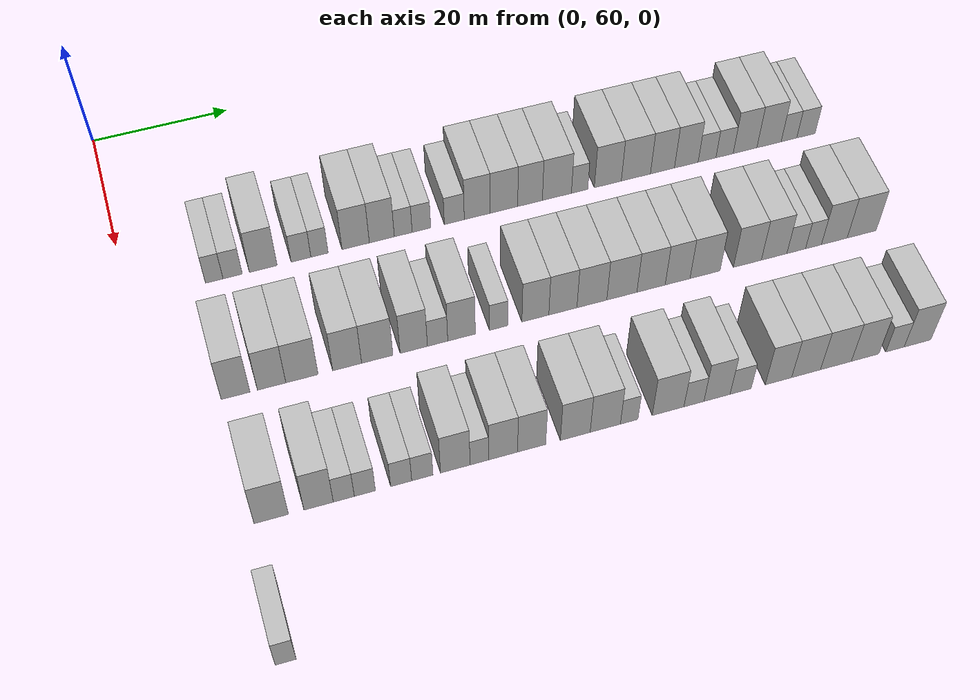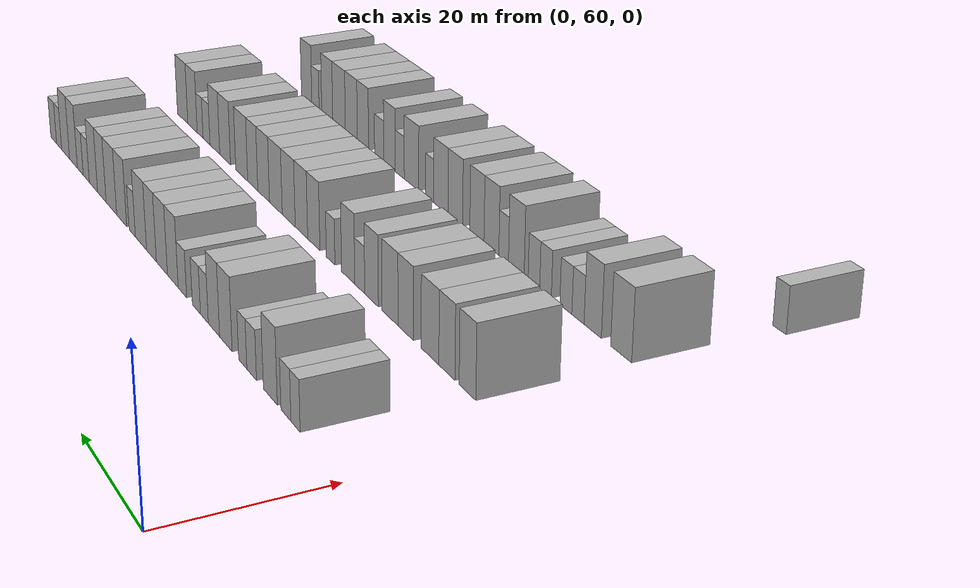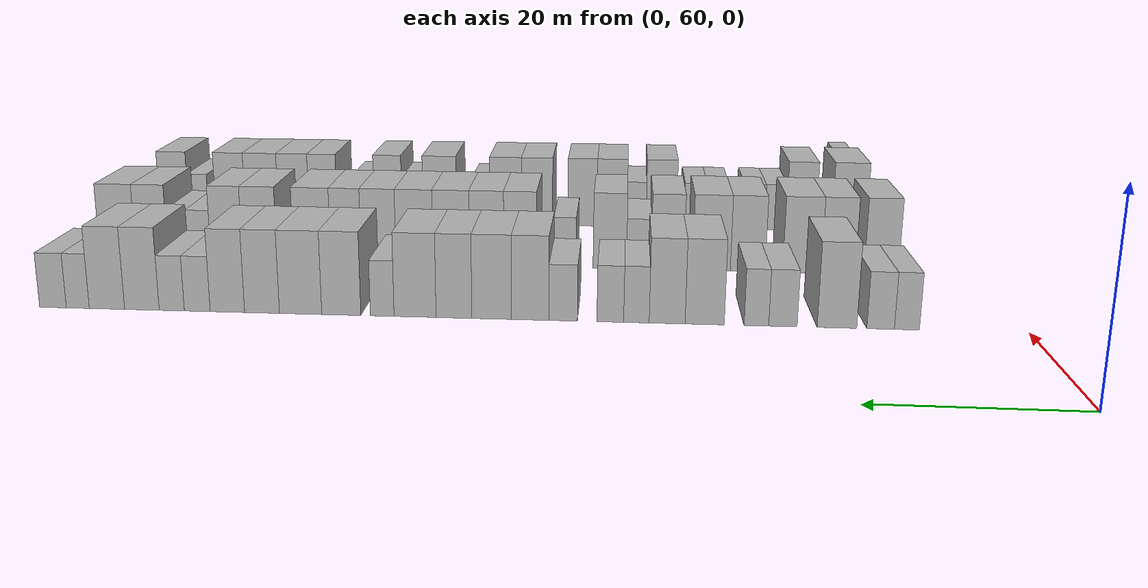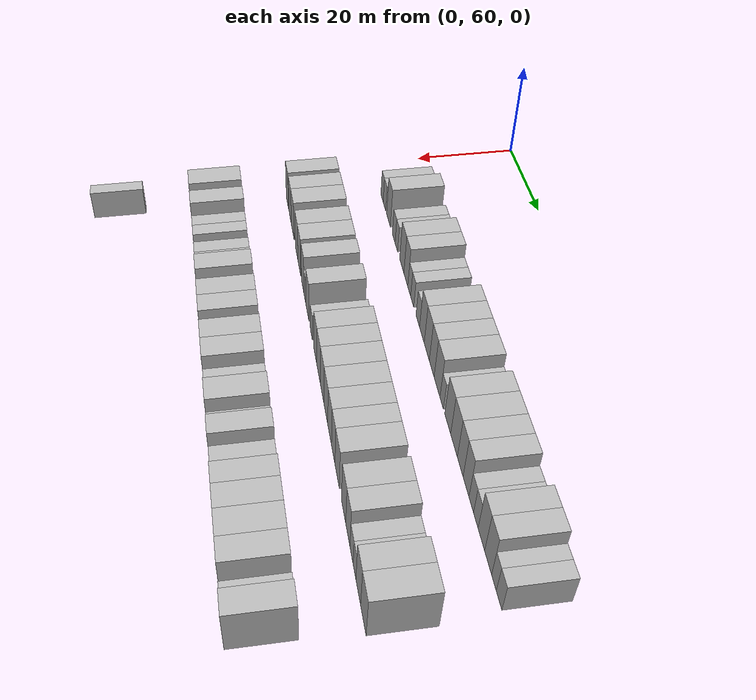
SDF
<sdf version="1.6">
 <world name="default">
  <model name="building_103">
   <static>1</static>
   <pose>25.0000 71.9956 0 0.000000 0.000000 0.000000</pose>
   <link name="link">
    <pose>0 0 3.00 0 0 0</pose>
    <collision name="collision"><geometry><box><size>10.0000 2.4701 6.0000</size></box></geometry></collision>
    <visual name="visual">
     <cast_shadows>0</cast_shadows>
     <geometry><box><size>10.0000 2.4701 6.0000</size></box></geometry>
     <material>
      <script>
       <uri>model://HANNAS_wall/materials/scripts</uri>
       <uri>model://HANNAS_wall/materials/textures</uri>
       <name>vrc/HANNAS_wall</name>
      </script>
     </material>
    </visual>
   </link>
  </model>
  <model name="building_104">
   <static>1</static>
   <pose>25.0000 74.5949 0 0.000000 0.000000 0.000000</pose>
   <link name="link">
    <pose>0 0 3.00 0 0 0</pose>
    <collision name="collision"><geometry><box><size>10.0000 2.7285 6.0000</size></box></geometry></collision>
    <visual name="visual">
     <cast_shadows>0</cast_shadows>
     <geometry><box><size>10.0000 2.7285 6.0000</size></box></geometry>
     <material>
      <script>
       <uri>model://HANNAS_wall/materials/scripts</uri>
       <uri>model://HANNAS_wall/materials/textures</uri>
       <name>vrc/HANNAS_wall</name>
      </script>
     </material>
    </visual>
   </link>
  </model>
  <model name="building_105">
   <static>1</static>
   <pose>25.0000 78.9301 0 0.000000 0.000000 0.000000</pose>
   <link name="link">
    <pose>0 0 4.50 0 0 0</pose>
    <collision name="collision"><geometry><box><size>10.0000 3.9420 9.0000</size></box></geometry></collision>
    <visual name="visual">
     <cast_shadows>0</cast_shadows>
     <geometry><box><size>10.0000 3.9420 9.0000</size></box></geometry>
     <material>
      <script>
       <uri>model://HANNAS_wall/materials/scripts</uri>
       <uri>model://HANNAS_wall/materials/textures</uri>
       <name>vrc/HANNAS_wall</name>
      </script>
     </material>
    </visual>
   </link>
  </model>
  <model name="building_106">
   <static>1</static>
   <pose>25.0000 84.3247 0 0.000000 0.000000 0.000000</pose>
   <link name="link">
    <pose>0 0 3.00 0 0 0</pose>
    <collision name="collision"><geometry><box><size>10.0000 2.8471 6.0000</size></box></geometry></collision>
    <visual name="visual">
     <cast_shadows>0</cast_shadows>
     <geometry><box><size>10.0000 2.8471 6.0000</size></box></geometry>
     <material>
      <script>
       <uri>model://HANNAS_wall/materials/scripts</uri>
       <uri>model://HANNAS_wall/materials/textures</uri>
       <name>vrc/HANNAS_wall</name>
      </script>
     </material>
    </visual>
   </link>
  </model>
  <model name="building_107">
   <static>1</static>
   <pose>25.0000 86.9825 0 0.000000 0.000000 0.000000</pose>
   <link name="link">
    <pose>0 0 3.00 0 0 0</pose>
    <collision name="collision"><geometry><box><size>10.0000 2.4686 6.0000</size></box></geometry></collision>
    <visual name="visual">
     <cast_shadows>0</cast_shadows>
     <geometry><box><size>10.0000 2.4686 6.0000</size></box></geometry>
     <material>
      <script>
       <uri>model://HANNAS_wall/materials/scripts</uri>
       <uri>model://HANNAS_wall/materials/textures</uri>
       <name>vrc/HANNAS_wall</name>
      </script>
     </material>
    </visual>
   </link>
  </model>
  <model name="building_108">
   <static>1</static>
   <pose>25.0000 92.1960 0 0.000000 0.000000 0.000000</pose>
   <link name="link">
    <pose>0 0 4.50 0 0 0</pose>
    <collision name="collision"><geometry><box><size>10.0000 3.9583 9.0000</size></box></geometry></collision>
    <visual name="visual">
     <cast_shadows>0</cast_shadows>
     <geometry><box><size>10.0000 3.9583 9.0000</size></box></geometry>
     <material>
      <script>
       <uri>model://HANNAS_wall/materials/scripts</uri>
       <uri>model://HANNAS_wall/materials/textures</uri>
       <name>vrc/HANNAS_wall</name>
      </script>
     </material>
    </visual>
   </link>
  </model>
  <model name="building_109">
   <static>1</static>
   <pose>25.0000 95.9973 0 0.000000 0.000000 0.000000</pose>
   <link name="link">
    <pose>0 0 4.50 0 0 0</pose>
    <collision name="collision"><geometry><box><size>10.0000 3.6442 9.0000</size></box></geometry></collision>
    <visual name="visual">
     <cast_shadows>0</cast_shadows>
     <geometry><box><size>10.0000 3.6442 9.0000</size></box></geometry>
     <material>
      <script>
       <uri>model://HANNAS_wall/materials/scripts</uri>
       <uri>model://HANNAS_wall/materials/textures</uri>
       <name>vrc/HANNAS_wall</name>
      </script>
     </material>
    </visual>
   </link>
  </model>
  <model name="building_110">
   <static>1</static>
   <pose>25.0000 99.1210 0 0.000000 0.000000 0.000000</pose>
   <link name="link">
    <pose>0 0 3.00 0 0 0</pose>
    <collision name="collision"><geometry><box><size>10.0000 2.6032 6.0000</size></box></geometry></collision>
    <visual name="visual">
     <cast_shadows>0</cast_shadows>
     <geometry><box><size>10.0000 2.6032 6.0000</size></box></geometry>
     <material>
      <script>
       <uri>model://HANNAS_wall/materials/scripts</uri>
       <uri>model://HANNAS_wall/materials/textures</uri>
       <name>vrc/HANNAS_wall</name>
      </script>
     </material>
    </visual>
   </link>
  </model>
  <model name="building_111">
   <static>1</static>
   <pose>25.0000 101.7868 0 0.000000 0.000000 0.000000</pose>
   <link name="link">
    <pose>0 0 3.00 0 0 0</pose>
    <collision name="collision"><geometry><box><size>10.0000 2.7285 6.0000</size></box></geometry></collision>
    <visual name="visual">
     <cast_shadows>0</cast_shadows>
     <geometry><box><size>10.0000 2.7285 6.0000</size></box></geometry>
     <material>
      <script>
       <uri>model://HANNAS_wall/materials/scripts</uri>
       <uri>model://HANNAS_wall/materials/textures</uri>
       <name>vrc/HANNAS_wall</name>
      </script>
     </material>
    </visual>
   </link>
  </model>
  <model name="building_112">
   <static>1</static>
   <pose>25.0000 106.6266 0 0.000000 0.000000 0.000000</pose>
   <link name="link">
    <pose>0 0 3.00 0 0 0</pose>
    <collision name="collision"><geometry><box><size>10.0000 2.9510 6.0000</size></box></geometry></collision>
    <visual name="visual">
     <cast_shadows>0</cast_shadows>
     <geometry><box><size>10.0000 2.9510 6.0000</size></box></geometry>
     <material>
      <script>
       <uri>model://HANNAS_wall/materials/scripts</uri>
       <uri>model://HANNAS_wall/materials/textures</uri>
       <name>vrc/HANNAS_wall</name>
      </script>
     </material>
    </visual>
   </link>
  </model>
  <model name="building_113">
   <static>1</static>
   <pose>25.0000 110.0286 0 0.000000 0.000000 0.000000</pose>
   <link name="link">
    <pose>0 0 4.50 0 0 0</pose>
    <collision name="collision"><geometry><box><size>10.0000 3.8529 9.0000</size></box></geometry></collision>
    <visual name="visual">
     <cast_shadows>0</cast_shadows>
     <geometry><box><size>10.0000 3.8529 9.0000</size></box></geometry>
     <material>
      <script>
       <uri>model://HANNAS_wall/materials/scripts</uri>
       <uri>model://HANNAS_wall/materials/textures</uri>
       <name>vrc/HANNAS_wall</name>
      </script>
     </material>
    </visual>
   </link>
  </model>
  <model name="building_114">
   <static>1</static>
   <pose>25.0000 114.0044 0 0.000000 0.000000 0.000000</pose>
   <link name="link">
    <pose>0 0 4.50 0 0 0</pose>
    <collision name="collision"><geometry><box><size>10.0000 4.0986 9.0000</size></box></geometry></collision>
    <visual name="visual">
     <cast_shadows>0</cast_shadows>
     <geometry><box><size>10.0000 4.0986 9.0000</size></box></geometry>
     <material>
      <script>
       <uri>model://HANNAS_wall/materials/scripts</uri>
       <uri>model://HANNAS_wall/materials/textures</uri>
       <name>vrc/HANNAS_wall</name>
      </script>
     </material>
    </visual>
   </link>
  </model>
  <model name="building_115">
   <static>1</static>
   <pose>25.0000 117.9129 0 0.000000 0.000000 0.000000</pose>
   <link name="link">
    <pose>0 0 4.50 0 0 0</pose>
    <collision name="collision"><geometry><box><size>10.0000 3.7184 9.0000</size></box></geometry></collision>
    <visual name="visual">
     <cast_shadows>0</cast_shadows>
     <geometry><box><size>10.0000 3.7184 9.0000</size></box></geometry>
     <material>
      <script>
       <uri>model://HANNAS_wall/materials/scripts</uri>
       <uri>model://HANNAS_wall/materials/textures</uri>
       <name>vrc/HANNAS_wall</name>
      </script>
     </material>
    </visual>
   </link>
  </model>
  <model name="building_116">
   <static>1</static>
   <pose>25.0000 121.9671 0 0.000000 0.000000 0.000000</pose>
   <link name="link">
    <pose>0 0 4.50 0 0 0</pose>
    <collision name="collision"><geometry><box><size>10.0000 4.3900 9.0000</size></box></geometry></collision>
    <visual name="visual">
     <cast_shadows>0</cast_shadows>
     <geometry><box><size>10.0000 4.3900 9.0000</size></box></geometry>
     <material>
      <script>
       <uri>model://HANNAS_wall/materials/scripts</uri>
       <uri>model://HANNAS_wall/materials/textures</uri>
       <name>vrc/HANNAS_wall</name>
      </script>
     </material>
    </visual>
   </link>
  </model>
  <model name="building_117">
   <static>1</static>
   <pose>25.0000 125.4050 0 0.000000 0.000000 0.000000</pose>
   <link name="link">
    <pose>0 0 3.00 0 0 0</pose>
    <collision name="collision"><geometry><box><size>10.0000 2.4857 6.0000</size></box></geometry></collision>
    <visual name="visual">
     <cast_shadows>0</cast_shadows>
     <geometry><box><size>10.0000 2.4857 6.0000</size></box></geometry>
     <material>
      <script>
       <uri>model://HANNAS_wall/materials/scripts</uri>
       <uri>model://HANNAS_wall/materials/textures</uri>
       <name>vrc/HANNAS_wall</name>
      </script>
     </material>
    </visual>
   </link>
  </model>
  <model name="building_118">
   <static>1</static>
   <pose>25.0000 129.7108 0 0.000000 0.000000 0.000000</pose>
   <link name="link">
    <pose>0 0 4.50 0 0 0</pose>
    <collision name="collision"><geometry><box><size>10.0000 4.1260 9.0000</size></box></geometry></collision>
    <visual name="visual">
     <cast_shadows>0</cast_shadows>
     <geometry><box><size>10.0000 4.1260 9.0000</size></box></geometry>
     <material>
      <script>
       <uri>model://HANNAS_wall/materials/scripts</uri>
       <uri>model://HANNAS_wall/materials/textures</uri>
       <name>vrc/HANNAS_wall</name>
      </script>
     </material>
    </visual>
   </link>
  </model>
  <model name="building_119">
   <static>1</static>
   <pose>25.0000 134.0146 0 0.000000 0.000000 0.000000</pose>
   <link name="link">
    <pose>0 0 4.50 0 0 0</pose>
    <collision name="collision"><geometry><box><size>10.0000 4.4817 9.0000</size></box></geometry></collision>
    <visual name="visual">
     <cast_shadows>0</cast_shadows>
     <geometry><box><size>10.0000 4.4817 9.0000</size></box></geometry>
     <material>
      <script>
       <uri>model://HANNAS_wall/materials/scripts</uri>
       <uri>model://HANNAS_wall/materials/textures</uri>
       <name>vrc/HANNAS_wall</name>
      </script>
     </material>
    </visual>
   </link>
  </model>
  <model name="building_120">
   <static>1</static>
   <pose>25.0000 138.1126 0 0.000000 0.000000 0.000000</pose>
   <link name="link">
    <pose>0 0 4.50 0 0 0</pose>
    <collision name="collision"><geometry><box><size>10.0000 3.7144 9.0000</size></box></geometry></collision>
    <visual name="visual">
     <cast_shadows>0</cast_shadows>
     <geometry><box><size>10.0000 3.7144 9.0000</size></box></geometry>
     <material>
      <script>
       <uri>model://HANNAS_wall/materials/scripts</uri>
       <uri>model://HANNAS_wall/materials/textures</uri>
       <name>vrc/HANNAS_wall</name>
      </script>
     </material>
    </visual>
   </link>
  </model>
  <model name="building_121">
   <static>1</static>
   <pose>25.0000 141.8092 0 0.000000 0.000000 0.000000</pose>
   <link name="link">
    <pose>0 0 4.50 0 0 0</pose>
    <collision name="collision"><geometry><box><size>10.0000 3.6787 9.0000</size></box></geometry></collision>
    <visual name="visual">
     <cast_shadows>0</cast_shadows>
     <geometry><box><size>10.0000 3.6787 9.0000</size></box></geometry>
     <material>
      <script>
       <uri>model://HANNAS_wall/materials/scripts</uri>
       <uri>model://HANNAS_wall/materials/textures</uri>
       <name>vrc/HANNAS_wall</name>
      </script>
     </material>
    </visual>
   </link>
  </model>
  <model name="building_122">
   <static>1</static>
   <pose>25.0000 145.0385 0 0.000000 0.000000 0.000000</pose>
   <link name="link">
    <pose>0 0 3.00 0 0 0</pose>
    <collision name="collision"><geometry><box><size>10.0000 2.7798 6.0000</size></box></geometry></collision>
    <visual name="visual">
     <cast_shadows>0</cast_shadows>
     <geometry><box><size>10.0000 2.7798 6.0000</size></box></geometry>
     <material>
      <script>
       <uri>model://HANNAS_wall/materials/scripts</uri>
       <uri>model://HANNAS_wall/materials/textures</uri>
       <name>vrc/HANNAS_wall</name>
      </script>
     </material>
    </visual>
   </link>
  </model>
  <model name="building_123">
   <static>1</static>
   <pose>25.0000 147.7805 0 0.000000 0.000000 0.000000</pose>
   <link name="link">
    <pose>0 0 3.00 0 0 0</pose>
    <collision name="collision"><geometry><box><size>10.0000 2.7042 6.0000</size></box></geometry></collision>
    <visual name="visual">
     <cast_shadows>0</cast_shadows>
     <geometry><box><size>10.0000 2.7042 6.0000</size></box></geometry>
     <material>
      <script>
       <uri>model://HANNAS_wall/materials/scripts</uri>
       <uri>model://HANNAS_wall/materials/textures</uri>
       <name>vrc/HANNAS_wall</name>
      </script>
     </material>
    </visual>
   </link>
  </model>
  <model name="building_124">
   <static>1</static>
   <pose>25.0000 151.0014 0 0.000000 0.000000 0.000000</pose>
   <link name="link">
    <pose>0 0 4.50 0 0 0</pose>
    <collision name="collision"><geometry><box><size>10.0000 3.7376 9.0000</size></box></geometry></collision>
    <visual name="visual">
     <cast_shadows>0</cast_shadows>
     <geometry><box><size>10.0000 3.7376 9.0000</size></box></geometry>
     <material>
      <script>
       <uri>model://HANNAS_wall/materials/scripts</uri>
       <uri>model://HANNAS_wall/materials/textures</uri>
       <name>vrc/HANNAS_wall</name>
      </script>
     </material>
    </visual>
   </link>
  </model>
  <model name="building_125">
   <static>1</static>
   <pose>25.0000 154.7892 0 0.000000 0.000000 0.000000</pose>
   <link name="link">
    <pose>0 0 4.50 0 0 0</pose>
    <collision name="collision"><geometry><box><size>10.0000 3.8380 9.0000</size></box></geometry></collision>
    <visual name="visual">
     <cast_shadows>0</cast_shadows>
     <geometry><box><size>10.0000 3.8380 9.0000</size></box></geometry>
     <material>
      <script>
       <uri>model://HANNAS_wall/materials/scripts</uri>
       <uri>model://HANNAS_wall/materials/textures</uri>
       <name>vrc/HANNAS_wall</name>
      </script>
     </material>
    </visual>
   </link>
  </model>
  <model name="building_126">
   <static>1</static>
   <pose>25.0000 157.9588 0 0.000000 0.000000 0.000000</pose>
   <link name="link">
    <pose>0 0 3.00 0 0 0</pose>
    <collision name="collision"><geometry><box><size>10.0000 2.5012 6.0000</size></box></geometry></collision>
    <visual name="visual">
     <cast_shadows>0</cast_shadows>
     <geometry><box><size>10.0000 2.5012 6.0000</size></box></geometry>
     <material>
      <script>
       <uri>model://HANNAS_wall/materials/scripts</uri>
       <uri>model://HANNAS_wall/materials/textures</uri>
       <name>vrc/HANNAS_wall</name>
      </script>
     </material>
    </visual>
   </link>
  </model>
  <model name="building_127">
   <static>1</static>
   <pose>25.0000 160.6628 0 0.000000 0.000000 0.000000</pose>
   <link name="link">
    <pose>0 0 3.00 0 0 0</pose>
    <collision name="collision"><geometry><box><size>10.0000 2.9068 6.0000</size></box></geometry></collision>
    <visual name="visual">
     <cast_shadows>0</cast_shadows>
     <geometry><box><size>10.0000 2.9068 6.0000</size></box></geometry>
     <material>
      <script>
       <uri>model://HANNAS_wall/materials/scripts</uri>
       <uri>model://HANNAS_wall/materials/textures</uri>
       <name>vrc/HANNAS_wall</name>
      </script>
     </material>
    </visual>
   </link>
  </model>
  <model name="building_285">
   <static>1</static>
   <pose>44.0000 70.9785 0 0.000000 0.000000 0.000000</pose>
   <link name="link">
    <pose>0 0 4.50 0 0 0</pose>
    <collision name="collision"><geometry><box><size>10.0000 3.8716 9.0000</size></box></geometry></collision>
    <visual name="visual">
     <cast_shadows>0</cast_shadows>
     <geometry><box><size>10.0000 3.8716 9.0000</size></box></geometry>
     <material>
      <script>
       <uri>model://HANNAS_wall/materials/scripts</uri>
       <uri>model://HANNAS_wall/materials/textures</uri>
       <name>vrc/HANNAS_wall</name>
      </script>
     </material>
    </visual>
   </link>
  </model>
  <model name="building_286">
   <static>1</static>
   <pose>44.0000 75.8407 0 0.000000 0.000000 0.000000</pose>
   <link name="link">
    <pose>0 0 4.50 0 0 0</pose>
    <collision name="collision"><geometry><box><size>10.0000 3.8529 9.0000</size></box></geometry></collision>
    <visual name="visual">
     <cast_shadows>0</cast_shadows>
     <geometry><box><size>10.0000 3.8529 9.0000</size></box></geometry>
     <material>
      <script>
       <uri>model://HANNAS_wall/materials/scripts</uri>
       <uri>model://HANNAS_wall/materials/textures</uri>
       <name>vrc/HANNAS_wall</name>
      </script>
     </material>
    </visual>
   </link>
  </model>
  <model name="building_287">
   <static>1</static>
   <pose>44.0000 79.9654 0 0.000000 0.000000 0.000000</pose>
   <link name="link">
    <pose>0 0 4.50 0 0 0</pose>
    <collision name="collision"><geometry><box><size>10.0000 4.3964 9.0000</size></box></geometry></collision>
    <visual name="visual">
     <cast_shadows>0</cast_shadows>
     <geometry><box><size>10.0000 4.3964 9.0000</size></box></geometry>
     <material>
      <script>
       <uri>model://HANNAS_wall/materials/scripts</uri>
       <uri>model://HANNAS_wall/materials/textures</uri>
       <name>vrc/HANNAS_wall</name>
      </script>
     </material>
    </visual>
   </link>
  </model>
  <model name="building_288">
   <static>1</static>
   <pose>44.0000 86.1552 0 0.000000 0.000000 0.000000</pose>
   <link name="link">
    <pose>0 0 4.50 0 0 0</pose>
    <collision name="collision"><geometry><box><size>10.0000 3.9832 9.0000</size></box></geometry></collision>
    <visual name="visual">
     <cast_shadows>0</cast_shadows>
     <geometry><box><size>10.0000 3.9832 9.0000</size></box></geometry>
     <material>
      <script>
       <uri>model://HANNAS_wall/materials/scripts</uri>
       <uri>model://HANNAS_wall/materials/textures</uri>
       <name>vrc/HANNAS_wall</name>
      </script>
     </material>
    </visual>
   </link>
  </model>
  <model name="building_289">
   <static>1</static>
   <pose>44.0000 90.3144 0 0.000000 0.000000 0.000000</pose>
   <link name="link">
    <pose>0 0 4.50 0 0 0</pose>
    <collision name="collision"><geometry><box><size>10.0000 4.3354 9.0000</size></box></geometry></collision>
    <visual name="visual">
     <cast_shadows>0</cast_shadows>
     <geometry><box><size>10.0000 4.3354 9.0000</size></box></geometry>
     <material>
      <script>
       <uri>model://HANNAS_wall/materials/scripts</uri>
       <uri>model://HANNAS_wall/materials/textures</uri>
       <name>vrc/HANNAS_wall</name>
      </script>
     </material>
    </visual>
   </link>
  </model>
  <model name="building_290">
   <static>1</static>
   <pose>44.0000 95.3880 0 0.000000 0.000000 0.000000</pose>
   <link name="link">
    <pose>0 0 4.50 0 0 0</pose>
    <collision name="collision"><geometry><box><size>10.0000 3.8118 9.0000</size></box></geometry></collision>
    <visual name="visual">
     <cast_shadows>0</cast_shadows>
     <geometry><box><size>10.0000 3.8118 9.0000</size></box></geometry>
     <material>
      <script>
       <uri>model://HANNAS_wall/materials/scripts</uri>
       <uri>model://HANNAS_wall/materials/textures</uri>
       <name>vrc/HANNAS_wall</name>
      </script>
     </material>
    </visual>
   </link>
  </model>
  <model name="building_291">
   <static>1</static>
   <pose>44.0000 98.7180 0 0.000000 0.000000 0.000000</pose>
   <link name="link">
    <pose>0 0 3.00 0 0 0</pose>
    <collision name="collision"><geometry><box><size>10.0000 2.8482 6.0000</size></box></geometry></collision>
    <visual name="visual">
     <cast_shadows>0</cast_shadows>
     <geometry><box><size>10.0000 2.8482 6.0000</size></box></geometry>
     <material>
      <script>
       <uri>model://HANNAS_wall/materials/scripts</uri>
       <uri>model://HANNAS_wall/materials/textures</uri>
       <name>vrc/HANNAS_wall</name>
      </script>
     </material>
    </visual>
   </link>
  </model>
  <model name="building_292">
   <static>1</static>
   <pose>44.0000 102.0854 0 0.000000 0.000000 0.000000</pose>
   <link name="link">
    <pose>0 0 4.50 0 0 0</pose>
    <collision name="collision"><geometry><box><size>10.0000 3.8864 9.0000</size></box></geometry></collision>
    <visual name="visual">
     <cast_shadows>0</cast_shadows>
     <geometry><box><size>10.0000 3.8864 9.0000</size></box></geometry>
     <material>
      <script>
       <uri>model://HANNAS_wall/materials/scripts</uri>
       <uri>model://HANNAS_wall/materials/textures</uri>
       <name>vrc/HANNAS_wall</name>
      </script>
     </material>
    </visual>
   </link>
  </model>
  <model name="building_293">
   <static>1</static>
   <pose>44.0000 107.3377 0 0.000000 0.000000 0.000000</pose>
   <link name="link">
    <pose>0 0 3.00 0 0 0</pose>
    <collision name="collision"><geometry><box><size>10.0000 2.6182 6.0000</size></box></geometry></collision>
    <visual name="visual">
     <cast_shadows>0</cast_shadows>
     <geometry><box><size>10.0000 2.6182 6.0000</size></box></geometry>
     <material>
      <script>
       <uri>model://HANNAS_wall/materials/scripts</uri>
       <uri>model://HANNAS_wall/materials/textures</uri>
       <name>vrc/HANNAS_wall</name>
      </script>
     </material>
    </visual>
   </link>
  </model>
  <model name="building_294">
   <static>1</static>
   <pose>44.0000 112.5745 0 0.000000 0.000000 0.000000</pose>
   <link name="link">
    <pose>0 0 4.50 0 0 0</pose>
    <collision name="collision"><geometry><box><size>10.0000 3.8553 9.0000</size></box></geometry></collision>
    <visual name="visual">
     <cast_shadows>0</cast_shadows>
     <geometry><box><size>10.0000 3.8553 9.0000</size></box></geometry>
     <material>
      <script>
       <uri>model://HANNAS_wall/materials/scripts</uri>
       <uri>model://HANNAS_wall/materials/textures</uri>
       <name>vrc/HANNAS_wall</name>
      </script>
     </material>
    </visual>
   </link>
  </model>
  <model name="building_295">
   <static>1</static>
   <pose>44.0000 116.5254 0 0.000000 0.000000 0.000000</pose>
   <link name="link">
    <pose>0 0 4.50 0 0 0</pose>
    <collision name="collision"><geometry><box><size>10.0000 4.0465 9.0000</size></box></geometry></collision>
    <visual name="visual">
     <cast_shadows>0</cast_shadows>
     <geometry><box><size>10.0000 4.0465 9.0000</size></box></geometry>
     <material>
      <script>
       <uri>model://HANNAS_wall/materials/scripts</uri>
       <uri>model://HANNAS_wall/materials/textures</uri>
       <name>vrc/HANNAS_wall</name>
      </script>
     </material>
    </visual>
   </link>
  </model>
  <model name="building_296">
   <static>1</static>
   <pose>44.0000 120.7147 0 0.000000 0.000000 0.000000</pose>
   <link name="link">
    <pose>0 0 4.50 0 0 0</pose>
    <collision name="collision"><geometry><box><size>10.0000 4.3321 9.0000</size></box></geometry></collision>
    <visual name="visual">
     <cast_shadows>0</cast_shadows>
     <geometry><box><size>10.0000 4.3321 9.0000</size></box></geometry>
     <material>
      <script>
       <uri>model://HANNAS_wall/materials/scripts</uri>
       <uri>model://HANNAS_wall/materials/textures</uri>
       <name>vrc/HANNAS_wall</name>
      </script>
     </material>
    </visual>
   </link>
  </model>
  <model name="building_297">
   <static>1</static>
   <pose>44.0000 125.0787 0 0.000000 0.000000 0.000000</pose>
   <link name="link">
    <pose>0 0 4.50 0 0 0</pose>
    <collision name="collision"><geometry><box><size>10.0000 4.3958 9.0000</size></box></geometry></collision>
    <visual name="visual">
     <cast_shadows>0</cast_shadows>
     <geometry><box><size>10.0000 4.3958 9.0000</size></box></geometry>
     <material>
      <script>
       <uri>model://HANNAS_wall/materials/scripts</uri>
       <uri>model://HANNAS_wall/materials/textures</uri>
       <name>vrc/HANNAS_wall</name>
      </script>
     </material>
    </visual>
   </link>
  </model>
  <model name="building_298">
   <static>1</static>
   <pose>44.0000 129.3518 0 0.000000 0.000000 0.000000</pose>
   <link name="link">
    <pose>0 0 4.50 0 0 0</pose>
    <collision name="collision"><geometry><box><size>10.0000 4.1506 9.0000</size></box></geometry></collision>
    <visual name="visual">
     <cast_shadows>0</cast_shadows>
     <geometry><box><size>10.0000 4.1506 9.0000</size></box></geometry>
     <material>
      <script>
       <uri>model://HANNAS_wall/materials/scripts</uri>
       <uri>model://HANNAS_wall/materials/textures</uri>
       <name>vrc/HANNAS_wall</name>
      </script>
     </material>
    </visual>
   </link>
  </model>
  <model name="building_299">
   <static>1</static>
   <pose>44.0000 133.2575 0 0.000000 0.000000 0.000000</pose>
   <link name="link">
    <pose>0 0 4.50 0 0 0</pose>
    <collision name="collision"><geometry><box><size>10.0000 3.6609 9.0000</size></box></geometry></collision>
    <visual name="visual">
     <cast_shadows>0</cast_shadows>
     <geometry><box><size>10.0000 3.6609 9.0000</size></box></geometry>
     <material>
      <script>
       <uri>model://HANNAS_wall/materials/scripts</uri>
       <uri>model://HANNAS_wall/materials/textures</uri>
       <name>vrc/HANNAS_wall</name>
      </script>
     </material>
    </visual>
   </link>
  </model>
  <model name="building_300">
   <static>1</static>
   <pose>44.0000 137.3212 0 0.000000 0.000000 0.000000</pose>
   <link name="link">
    <pose>0 0 4.50 0 0 0</pose>
    <collision name="collision"><geometry><box><size>10.0000 4.4664 9.0000</size></box></geometry></collision>
    <visual name="visual">
     <cast_shadows>0</cast_shadows>
     <geometry><box><size>10.0000 4.4664 9.0000</size></box></geometry>
     <material>
      <script>
       <uri>model://HANNAS_wall/materials/scripts</uri>
       <uri>model://HANNAS_wall/materials/textures</uri>
       <name>vrc/HANNAS_wall</name>
      </script>
     </material>
    </visual>
   </link>
  </model>
  <model name="building_301">
   <static>1</static>
   <pose>44.0000 143.6487 0 0.000000 0.000000 0.000000</pose>
   <link name="link">
    <pose>0 0 4.50 0 0 0</pose>
    <collision name="collision"><geometry><box><size>10.0000 4.1888 9.0000</size></box></geometry></collision>
    <visual name="visual">
     <cast_shadows>0</cast_shadows>
     <geometry><box><size>10.0000 4.1888 9.0000</size></box></geometry>
     <material>
      <script>
       <uri>model://HANNAS_wall/materials/scripts</uri>
       <uri>model://HANNAS_wall/materials/textures</uri>
       <name>vrc/HANNAS_wall</name>
      </script>
     </material>
    </visual>
   </link>
  </model>
  <model name="building_302">
   <static>1</static>
   <pose>44.0000 147.6702 0 0.000000 0.000000 0.000000</pose>
   <link name="link">
    <pose>0 0 4.50 0 0 0</pose>
    <collision name="collision"><geometry><box><size>10.0000 3.8541 9.0000</size></box></geometry></collision>
    <visual name="visual">
     <cast_shadows>0</cast_shadows>
     <geometry><box><size>10.0000 3.8541 9.0000</size></box></geometry>
     <material>
      <script>
       <uri>model://HANNAS_wall/materials/scripts</uri>
       <uri>model://HANNAS_wall/materials/textures</uri>
       <name>vrc/HANNAS_wall</name>
      </script>
     </material>
    </visual>
   </link>
  </model>
  <model name="building_303">
   <static>1</static>
   <pose>44.0000 151.0104 0 0.000000 0.000000 0.000000</pose>
   <link name="link">
    <pose>0 0 3.00 0 0 0</pose>
    <collision name="collision"><geometry><box><size>10.0000 2.8263 6.0000</size></box></geometry></collision>
    <visual name="visual">
     <cast_shadows>0</cast_shadows>
     <geometry><box><size>10.0000 2.8263 6.0000</size></box></geometry>
     <material>
      <script>
       <uri>model://HANNAS_wall/materials/scripts</uri>
       <uri>model://HANNAS_wall/materials/textures</uri>
       <name>vrc/HANNAS_wall</name>
      </script>
     </material>
    </visual>
   </link>
  </model>
  <model name="building_304">
   <static>1</static>
   <pose>44.0000 153.6326 0 0.000000 0.000000 0.000000</pose>
   <link name="link">
    <pose>0 0 3.00 0 0 0</pose>
    <collision name="collision"><geometry><box><size>10.0000 2.4180 6.0000</size></box></geometry></collision>
    <visual name="visual">
     <cast_shadows>0</cast_shadows>
     <geometry><box><size>10.0000 2.4180 6.0000</size></box></geometry>
     <material>
      <script>
       <uri>model://HANNAS_wall/materials/scripts</uri>
       <uri>model://HANNAS_wall/materials/textures</uri>
       <name>vrc/HANNAS_wall</name>
      </script>
     </material>
    </visual>
   </link>
  </model>
  <model name="building_305">
   <static>1</static>
   <pose>44.0000 156.8158 0 0.000000 0.000000 0.000000</pose>
   <link name="link">
    <pose>0 0 4.50 0 0 0</pose>
    <collision name="collision"><geometry><box><size>10.0000 3.9484 9.0000</size></box></geometry></collision>
    <visual name="visual">
     <cast_shadows>0</cast_shadows>
     <geometry><box><size>10.0000 3.9484 9.0000</size></box></geometry>
     <material>
      <script>
       <uri>model://HANNAS_wall/materials/scripts</uri>
       <uri>model://HANNAS_wall/materials/textures</uri>
       <name>vrc/HANNAS_wall</name>
      </script>
     </material>
    </visual>
   </link>
  </model>
  <model name="building_306">
   <static>1</static>
   <pose>44.0000 161.0143 0 0.000000 0.000000 0.000000</pose>
   <link name="link">
    <pose>0 0 4.50 0 0 0</pose>
    <collision name="collision"><geometry><box><size>10.0000 4.4487 9.0000</size></box></geometry></collision>
    <visual name="visual">
     <cast_shadows>0</cast_shadows>
     <geometry><box><size>10.0000 4.4487 9.0000</size></box></geometry>
     <material>
      <script>
       <uri>model://HANNAS_wall/materials/scripts</uri>
       <uri>model://HANNAS_wall/materials/textures</uri>
       <name>vrc/HANNAS_wall</name>
      </script>
     </material>
    </visual>
   </link>
  </model>
  <model name="building_461">
   <static>1</static>
   <pose>63.0000 71.5117 0 0.000000 0.000000 0.000000</pose>
   <link name="link">
    <pose>0 0 4.50 0 0 0</pose>
    <collision name="collision"><geometry><box><size>10.0000 4.4257 9.0000</size></box></geometry></collision>
    <visual name="visual">
     <cast_shadows>0</cast_shadows>
     <geometry><box><size>10.0000 4.4257 9.0000</size></box></geometry>
     <material>
      <script>
       <uri>model://HANNAS_wall/materials/scripts</uri>
       <uri>model://HANNAS_wall/materials/textures</uri>
       <name>vrc/HANNAS_wall</name>
      </script>
     </material>
    </visual>
   </link>
  </model>
  <model name="building_462">
   <static>1</static>
   <pose>63.0000 77.6345 0 0.000000 0.000000 0.000000</pose>
   <link name="link">
    <pose>0 0 4.50 0 0 0</pose>
    <collision name="collision"><geometry><box><size>10.0000 3.8199 9.0000</size></box></geometry></collision>
    <visual name="visual">
     <cast_shadows>0</cast_shadows>
     <geometry><box><size>10.0000 3.8199 9.0000</size></box></geometry>
     <material>
      <script>
       <uri>model://HANNAS_wall/materials/scripts</uri>
       <uri>model://HANNAS_wall/materials/textures</uri>
       <name>vrc/HANNAS_wall</name>
      </script>
     </material>
    </visual>
   </link>
  </model>
  <model name="building_463">
   <static>1</static>
   <pose>63.0000 80.9166 0 0.000000 0.000000 0.000000</pose>
   <link name="link">
    <pose>0 0 3.00 0 0 0</pose>
    <collision name="collision"><geometry><box><size>10.0000 2.7443 6.0000</size></box></geometry></collision>
    <visual name="visual">
     <cast_shadows>0</cast_shadows>
     <geometry><box><size>10.0000 2.7443 6.0000</size></box></geometry>
     <material>
      <script>
       <uri>model://HANNAS_wall/materials/scripts</uri>
       <uri>model://HANNAS_wall/materials/textures</uri>
       <name>vrc/HANNAS_wall</name>
      </script>
     </material>
    </visual>
   </link>
  </model>
  <model name="building_464">
   <static>1</static>
   <pose>63.0000 83.6709 0 0.000000 0.000000 0.000000</pose>
   <link name="link">
    <pose>0 0 3.00 0 0 0</pose>
    <collision name="collision"><geometry><box><size>10.0000 2.7645 6.0000</size></box></geometry></collision>
    <visual name="visual">
     <cast_shadows>0</cast_shadows>
     <geometry><box><size>10.0000 2.7645 6.0000</size></box></geometry>
     <material>
      <script>
       <uri>model://HANNAS_wall/materials/scripts</uri>
       <uri>model://HANNAS_wall/materials/textures</uri>
       <name>vrc/HANNAS_wall</name>
      </script>
     </material>
    </visual>
   </link>
  </model>
  <model name="building_465">
   <static>1</static>
   <pose>63.0000 88.4475 0 0.000000 0.000000 0.000000</pose>
   <link name="link">
    <pose>0 0 3.00 0 0 0</pose>
    <collision name="collision"><geometry><box><size>10.0000 2.7886 6.0000</size></box></geometry></collision>
    <visual name="visual">
     <cast_shadows>0</cast_shadows>
     <geometry><box><size>10.0000 2.7886 6.0000</size></box></geometry>
     <material>
      <script>
       <uri>model://HANNAS_wall/materials/scripts</uri>
       <uri>model://HANNAS_wall/materials/textures</uri>
       <name>vrc/HANNAS_wall</name>
      </script>
     </material>
    </visual>
   </link>
  </model>
  <model name="building_466">
   <static>1</static>
   <pose>63.0000 91.2507 0 0.000000 0.000000 0.000000</pose>
   <link name="link">
    <pose>0 0 3.00 0 0 0</pose>
    <collision name="collision"><geometry><box><size>10.0000 2.8178 6.0000</size></box></geometry></collision>
    <visual name="visual">
     <cast_shadows>0</cast_shadows>
     <geometry><box><size>10.0000 2.8178 6.0000</size></box></geometry>
     <material>
      <script>
       <uri>model://HANNAS_wall/materials/scripts</uri>
       <uri>model://HANNAS_wall/materials/textures</uri>
       <name>vrc/HANNAS_wall</name>
      </script>
     </material>
    </visual>
   </link>
  </model>
  <model name="building_467">
   <static>1</static>
   <pose>63.0000 95.6330 0 0.000000 0.000000 0.000000</pose>
   <link name="link">
    <pose>0 0 4.50 0 0 0</pose>
    <collision name="collision"><geometry><box><size>10.0000 3.9469 9.0000</size></box></geometry></collision>
    <visual name="visual">
     <cast_shadows>0</cast_shadows>
     <geometry><box><size>10.0000 3.9469 9.0000</size></box></geometry>
     <material>
      <script>
       <uri>model://HANNAS_wall/materials/scripts</uri>
       <uri>model://HANNAS_wall/materials/textures</uri>
       <name>vrc/HANNAS_wall</name>
      </script>
     </material>
    </visual>
   </link>
  </model>
  <model name="building_468">
   <static>1</static>
   <pose>63.0000 98.8481 0 0.000000 0.000000 0.000000</pose>
   <link name="link">
    <pose>0 0 3.00 0 0 0</pose>
    <collision name="collision"><geometry><box><size>10.0000 2.4833 6.0000</size></box></geometry></collision>
    <visual name="visual">
     <cast_shadows>0</cast_shadows>
     <geometry><box><size>10.0000 2.4833 6.0000</size></box></geometry>
     <material>
      <script>
       <uri>model://HANNAS_wall/materials/scripts</uri>
       <uri>model://HANNAS_wall/materials/textures</uri>
       <name>vrc/HANNAS_wall</name>
      </script>
     </material>
    </visual>
   </link>
  </model>
  <model name="building_469">
   <static>1</static>
   <pose>63.0000 102.0472 0 0.000000 0.000000 0.000000</pose>
   <link name="link">
    <pose>0 0 4.50 0 0 0</pose>
    <collision name="collision"><geometry><box><size>10.0000 3.9150 9.0000</size></box></geometry></collision>
    <visual name="visual">
     <cast_shadows>0</cast_shadows>
     <geometry><box><size>10.0000 3.9150 9.0000</size></box></geometry>
     <material>
      <script>
       <uri>model://HANNAS_wall/materials/scripts</uri>
       <uri>model://HANNAS_wall/materials/textures</uri>
       <name>vrc/HANNAS_wall</name>
      </script>
     </material>
    </visual>
   </link>
  </model>
  <model name="building_470">
   <static>1</static>
   <pose>63.0000 105.9182 0 0.000000 0.000000 0.000000</pose>
   <link name="link">
    <pose>0 0 4.50 0 0 0</pose>
    <collision name="collision"><geometry><box><size>10.0000 3.8270 9.0000</size></box></geometry></collision>
    <visual name="visual">
     <cast_shadows>0</cast_shadows>
     <geometry><box><size>10.0000 3.8270 9.0000</size></box></geometry>
     <material>
      <script>
       <uri>model://HANNAS_wall/materials/scripts</uri>
       <uri>model://HANNAS_wall/materials/textures</uri>
       <name>vrc/HANNAS_wall</name>
      </script>
     </material>
    </visual>
   </link>
  </model>
  <model name="building_471">
   <static>1</static>
   <pose>63.0000 111.8773 0 0.000000 0.000000 0.000000</pose>
   <link name="link">
    <pose>0 0 4.50 0 0 0</pose>
    <collision name="collision"><geometry><box><size>10.0000 4.0912 9.0000</size></box></geometry></collision>
    <visual name="visual">
     <cast_shadows>0</cast_shadows>
     <geometry><box><size>10.0000 4.0912 9.0000</size></box></geometry>
     <material>
      <script>
       <uri>model://HANNAS_wall/materials/scripts</uri>
       <uri>model://HANNAS_wall/materials/textures</uri>
       <name>vrc/HANNAS_wall</name>
      </script>
     </material>
    </visual>
   </link>
  </model>
  <model name="building_472">
   <static>1</static>
   <pose>63.0000 116.0076 0 0.000000 0.000000 0.000000</pose>
   <link name="link">
    <pose>0 0 4.50 0 0 0</pose>
    <collision name="collision"><geometry><box><size>10.0000 4.1693 9.0000</size></box></geometry></collision>
    <visual name="visual">
     <cast_shadows>0</cast_shadows>
     <geometry><box><size>10.0000 4.1693 9.0000</size></box></geometry>
     <material>
      <script>
       <uri>model://HANNAS_wall/materials/scripts</uri>
       <uri>model://HANNAS_wall/materials/textures</uri>
       <name>vrc/HANNAS_wall</name>
      </script>
     </material>
    </visual>
   </link>
  </model>
  <model name="building_473">
   <static>1</static>
   <pose>63.0000 119.3078 0 0.000000 0.000000 0.000000</pose>
   <link name="link">
    <pose>0 0 3.00 0 0 0</pose>
    <collision name="collision"><geometry><box><size>10.0000 2.4310 6.0000</size></box></geometry></collision>
    <visual name="visual">
     <cast_shadows>0</cast_shadows>
     <geometry><box><size>10.0000 2.4310 6.0000</size></box></geometry>
     <material>
      <script>
       <uri>model://HANNAS_wall/materials/scripts</uri>
       <uri>model://HANNAS_wall/materials/textures</uri>
       <name>vrc/HANNAS_wall</name>
      </script>
     </material>
    </visual>
   </link>
  </model>
  <model name="building_474">
   <static>1</static>
   <pose>63.0000 124.7406 0 0.000000 0.000000 0.000000</pose>
   <link name="link">
    <pose>0 0 4.50 0 0 0</pose>
    <collision name="collision"><geometry><box><size>10.0000 4.4347 9.0000</size></box></geometry></collision>
    <visual name="visual">
     <cast_shadows>0</cast_shadows>
     <geometry><box><size>10.0000 4.4347 9.0000</size></box></geometry>
     <material>
      <script>
       <uri>model://HANNAS_wall/materials/scripts</uri>
       <uri>model://HANNAS_wall/materials/textures</uri>
       <name>vrc/HANNAS_wall</name>
      </script>
     </material>
    </visual>
   </link>
  </model>
  <model name="building_475">
   <static>1</static>
   <pose>63.0000 128.3641 0 0.000000 0.000000 0.000000</pose>
   <link name="link">
    <pose>0 0 3.00 0 0 0</pose>
    <collision name="collision"><geometry><box><size>10.0000 2.8123 6.0000</size></box></geometry></collision>
    <visual name="visual">
     <cast_shadows>0</cast_shadows>
     <geometry><box><size>10.0000 2.8123 6.0000</size></box></geometry>
     <material>
      <script>
       <uri>model://HANNAS_wall/materials/scripts</uri>
       <uri>model://HANNAS_wall/materials/textures</uri>
       <name>vrc/HANNAS_wall</name>
      </script>
     </material>
    </visual>
   </link>
  </model>
  <model name="building_476">
   <static>1</static>
   <pose>63.0000 131.6236 0 0.000000 0.000000 0.000000</pose>
   <link name="link">
    <pose>0 0 4.50 0 0 0</pose>
    <collision name="collision"><geometry><box><size>10.0000 3.7068 9.0000</size></box></geometry></collision>
    <visual name="visual">
     <cast_shadows>0</cast_shadows>
     <geometry><box><size>10.0000 3.7068 9.0000</size></box></geometry>
     <material>
      <script>
       <uri>model://HANNAS_wall/materials/scripts</uri>
       <uri>model://HANNAS_wall/materials/textures</uri>
       <name>vrc/HANNAS_wall</name>
      </script>
     </material>
    </visual>
   </link>
  </model>
  <model name="building_477">
   <static>1</static>
   <pose>63.0000 134.9725 0 0.000000 0.000000 0.000000</pose>
   <link name="link">
    <pose>0 0 3.00 0 0 0</pose>
    <collision name="collision"><geometry><box><size>10.0000 2.9910 6.0000</size></box></geometry></collision>
    <visual name="visual">
     <cast_shadows>0</cast_shadows>
     <geometry><box><size>10.0000 2.9910 6.0000</size></box></geometry>
     <material>
      <script>
       <uri>model://HANNAS_wall/materials/scripts</uri>
       <uri>model://HANNAS_wall/materials/textures</uri>
       <name>vrc/HANNAS_wall</name>
      </script>
     </material>
    </visual>
   </link>
  </model>
  <model name="building_478">
   <static>1</static>
   <pose>63.0000 140.3614 0 0.000000 0.000000 0.000000</pose>
   <link name="link">
    <pose>0 0 4.50 0 0 0</pose>
    <collision name="collision"><geometry><box><size>10.0000 3.7870 9.0000</size></box></geometry></collision>
    <visual name="visual">
     <cast_shadows>0</cast_shadows>
     <geometry><box><size>10.0000 3.7870 9.0000</size></box></geometry>
     <material>
      <script>
       <uri>model://HANNAS_wall/materials/scripts</uri>
       <uri>model://HANNAS_wall/materials/textures</uri>
       <name>vrc/HANNAS_wall</name>
      </script>
     </material>
    </visual>
   </link>
  </model>
  <model name="building_479">
   <static>1</static>
   <pose>63.0000 144.3338 0 0.000000 0.000000 0.000000</pose>
   <link name="link">
    <pose>0 0 4.50 0 0 0</pose>
    <collision name="collision"><geometry><box><size>10.0000 4.1577 9.0000</size></box></geometry></collision>
    <visual name="visual">
     <cast_shadows>0</cast_shadows>
     <geometry><box><size>10.0000 4.1577 9.0000</size></box></geometry>
     <material>
      <script>
       <uri>model://HANNAS_wall/materials/scripts</uri>
       <uri>model://HANNAS_wall/materials/textures</uri>
       <name>vrc/HANNAS_wall</name>
      </script>
     </material>
    </visual>
   </link>
  </model>
  <model name="building_480">
   <static>1</static>
   <pose>63.0000 148.6584 0 0.000000 0.000000 0.000000</pose>
   <link name="link">
    <pose>0 0 4.50 0 0 0</pose>
    <collision name="collision"><geometry><box><size>10.0000 4.4916 9.0000</size></box></geometry></collision>
    <visual name="visual">
     <cast_shadows>0</cast_shadows>
     <geometry><box><size>10.0000 4.4916 9.0000</size></box></geometry>
     <material>
      <script>
       <uri>model://HANNAS_wall/materials/scripts</uri>
       <uri>model://HANNAS_wall/materials/textures</uri>
       <name>vrc/HANNAS_wall</name>
      </script>
     </material>
    </visual>
   </link>
  </model>
  <model name="building_481">
   <static>1</static>
   <pose>63.0000 152.9180 0 0.000000 0.000000 0.000000</pose>
   <link name="link">
    <pose>0 0 4.50 0 0 0</pose>
    <collision name="collision"><geometry><box><size>10.0000 4.0276 9.0000</size></box></geometry></collision>
    <visual name="visual">
     <cast_shadows>0</cast_shadows>
     <geometry><box><size>10.0000 4.0276 9.0000</size></box></geometry>
     <material>
      <script>
       <uri>model://HANNAS_wall/materials/scripts</uri>
       <uri>model://HANNAS_wall/materials/textures</uri>
       <name>vrc/HANNAS_wall</name>
      </script>
     </material>
    </visual>
   </link>
  </model>
  <model name="building_482">
   <static>1</static>
   <pose>63.0000 157.2847 0 0.000000 0.000000 0.000000</pose>
   <link name="link">
    <pose>0 0 3.00 0 0 0</pose>
    <collision name="collision"><geometry><box><size>10.0000 2.7057 6.0000</size></box></geometry></collision>
    <visual name="visual">
     <cast_shadows>0</cast_shadows>
     <geometry><box><size>10.0000 2.7057 6.0000</size></box></geometry>
     <material>
      <script>
       <uri>model://HANNAS_wall/materials/scripts</uri>
       <uri>model://HANNAS_wall/materials/textures</uri>
       <name>vrc/HANNAS_wall</name>
      </script>
     </material>
    </visual>
   </link>
  </model>
  <model name="building_483">
   <static>1</static>
   <pose>63.0000 160.6141 0 0.000000 0.000000 0.000000</pose>
   <link name="link">
    <pose>0 0 4.50 0 0 0</pose>
    <collision name="collision"><geometry><box><size>10.0000 3.9532 9.0000</size></box></geometry></collision>
    <visual name="visual">
     <cast_shadows>0</cast_shadows>
     <geometry><box><size>10.0000 3.9532 9.0000</size></box></geometry>
     <material>
      <script>
       <uri>model://HANNAS_wall/materials/scripts</uri>
       <uri>model://HANNAS_wall/materials/textures</uri>
       <name>vrc/HANNAS_wall</name>
      </script>
     </material>
    </visual>
   </link>
  </model>
  <model name="building_640">
   <static>1</static>
   <pose>82.0000 68.9874 0 0.000000 0.000000 0.000000</pose>
   <link name="link">
    <pose>0 0 3.00 0 0 0</pose>
    <collision name="collision"><geometry><box><size>10.0000 2.5682 6.0000</size></box></geometry></collision>
    <visual name="visual">
     <cast_shadows>0</cast_shadows>
     <geometry><box><size>10.0000 2.5682 6.0000</size></box></geometry>
     <material>
      <script>
       <uri>model://HANNAS_wall/materials/scripts</uri>
       <uri>model://HANNAS_wall/materials/textures</uri>
       <name>vrc/HANNAS_wall</name>
      </script>
     </material>
    </visual>
   </link>
  </model>
 </world>
</sdf>
